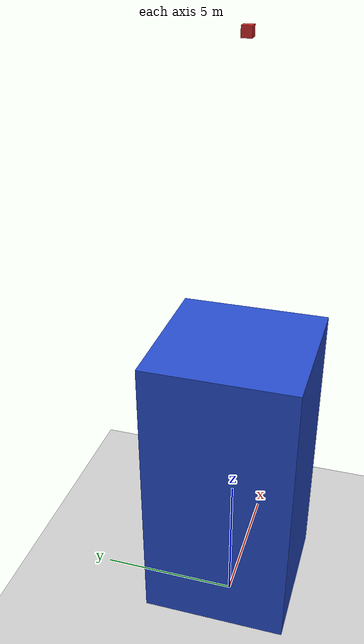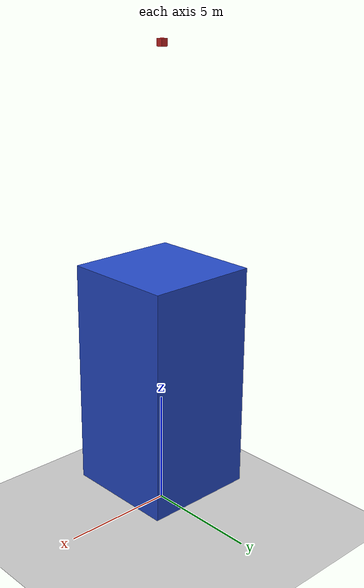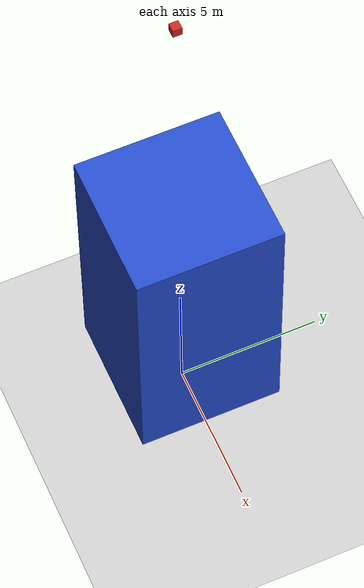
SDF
<?xml version="1.0" ?>
<sdf version="1.5">
	<world name="test">
		<include>
			<uri>model://ground_plane</uri>
		</include>

		<include>
			<uri>model://sun</uri>
		</include>

		<include>
			<uri>model://box</uri>
		</include>

		<scene>
			<sky><clouds><speed>2</speed></clouds></sky>
		</scene>
		<model name='stand'>
		    <pose>0 0 6 0 0 0</pose>
			<link name='base'>

				<collision name='stand_collision'>
					<geometry><box><size>5 5 10</size></box></geometry>
				</collision>
				<visual name='stand_visual'>
					<geometry><box><size>5 5 10</size></box></geometry>
					<material>
                    <script>
                        <uri>file://media/materials/scripts/gazebo.material</uri>
                        <name>Gazebo/Blue</name>
                    </script>
                </material>
				</visual>

			</link>
		</model>

		<physics name='default_physics' default='0' type='ode'>
			<max_step_size>0.001</max_step_size>
			<real_time_factor>1</real_time_factor>
			<real_time_update_rate>1000</real_time_update_rate>
		</physics>
	</world>
</sdf>

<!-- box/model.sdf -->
<sdf version="1.5">
<model name='box'>
	<pose>0 0 20 0 0 0</pose>
	<link name='base_link'>
		<inertial>
			<mass>0.4</mass>
			<inertia>
				<ixx>0.0001</ixx>
				<iyy>0.0001</iyy>
				<izz>0.0001</izz>
				<ixy>0</ixy>
				<ixz>0</ixz>
				<iyz>0</iyz>
			</inertia>
		</inertial>
		<collision name='collision'>
			<geometry>
				<box><size>0.3 0.3 0.3</size></box>
			</geometry>
			<surface>
				<friction>
					<ode>
						<mu>0.1</mu>
						<mu2>0.1</mu2>
					</ode>
				</friction>
			</surface>
		</collision>
		<visual name='visual'>
			<geometry>
				<box><size>0.3 0.3 0.3</size></box>
			</geometry>
			<material>
				<script>
					<uri>file://media/materials/scripts/gazebo.material</uri>
					<name>Gazebo/Red</name>
				</script>
			</material>
		</visual>
		<gravity>1</gravity>
		<self_collide>1</self_collide>
	</link>
	<plugin name='parachute_plugin' filename='libtest_parachute.so'>
		<robotNamespace/>
		<!-- message type std_msgs Bool : publish True or 1 to trigger-->
		<parachuteTriggerTopic>box</parachuteTriggerTopic>
	</plugin>
</model>
</sdf>
